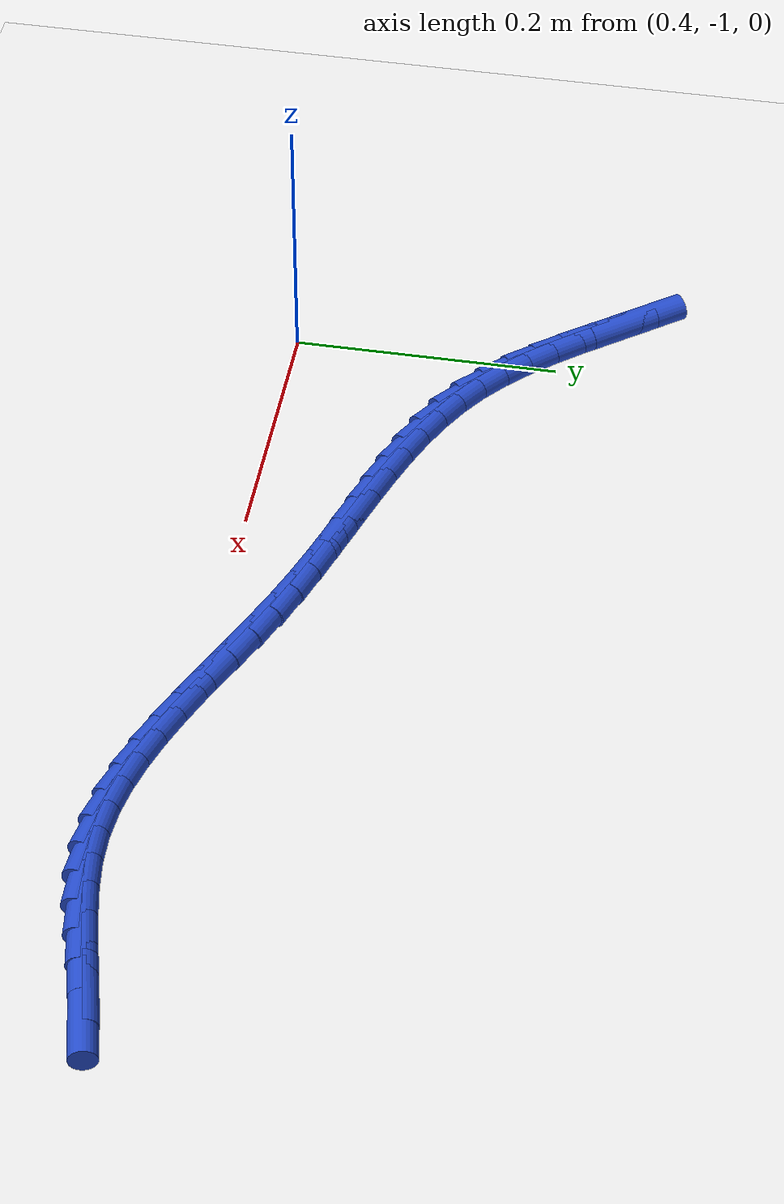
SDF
<sdf version="1.6">
 <world name="default">
  <model name="ground_plane">
   <static>1</static>
   <link name="link">
    <collision name="collision">
     <geometry><plane><normal>0 0 1</normal><size>100 100</size></plane></geometry>
     <surface><friction><ode><mu>100</mu><mu2>50</mu2></ode></friction></surface>
    </collision>
    <visual name="visual">
     <cast_shadows>0</cast_shadows>
     <geometry><plane><normal>0 0 1</normal><size>100 100</size></plane></geometry>
     <material>
      <script><uri>file://media/materials/scripts/gazebo.material</uri><name>Gazebo/WhiteGlow</name></script>
     </material>
    </visual>
   </link>
  </model>
  <model name="line">
   <link name="link_202">
    <pose>1.053801690898591 -1.0093807963701966 0.01 0 1.57 0.23704104024897</pose>
    <collision name="collision">
     <geometry><cylinder><radius>0.01</radius><length>0.08</length></cylinder></geometry>
    </collision>
    <visual name="visual">
     <material>
      <script><name>Gazebo/Blue</name><uri>file://media/materials/scripts/gazebo.material</uri></script>
     </material>
     <geometry><cylinder><radius>0.01</radius><length>0.08</length></cylinder></geometry>
    </visual>
   </link>
   <link name="link_203">
    <pose>1.0298730687956008 -1.0151615399470244 0.01 0 1.57 0.25125844231466976</pose>
    <collision name="collision">
     <geometry><cylinder><radius>0.01</radius><length>0.08</length></cylinder></geometry>
    </collision>
    <visual name="visual">
     <material>
      <script><name>Gazebo/Blue</name><uri>file://media/materials/scripts/gazebo.material</uri></script>
     </material>
     <geometry><cylinder><radius>0.01</radius><length>0.08</length></cylinder></geometry>
    </visual>
   </link>
   <link name="link_204">
    <pose>1.0061557265822083 -1.0212493748205909 0.01 0 1.57 0.23930543490262804</pose>
    <collision name="collision">
     <geometry><cylinder><radius>0.01</radius><length>0.08</length></cylinder></geometry>
    </collision>
    <visual name="visual">
     <material>
      <script><name>Gazebo/Blue</name><uri>file://media/materials/scripts/gazebo.material</uri></script>
     </material>
     <geometry><cylinder><radius>0.01</radius><length>0.08</length></cylinder></geometry>
    </visual>
   </link>
   <link name="link_205">
    <pose>0.9826399604010251 -1.0269867671548272 0.01 0 1.57 0.20005883130107316</pose>
    <collision name="collision">
     <geometry><cylinder><radius>0.01</radius><length>0.08</length></cylinder></geometry>
    </collision>
    <visual name="visual">
     <material>
      <script><name>Gazebo/Blue</name><uri>file://media/materials/scripts/gazebo.material</uri></script>
     </material>
     <geometry><cylinder><radius>0.01</radius><length>0.08</length></cylinder></geometry>
    </visual>
   </link>
   <link name="link_206">
    <pose>0.9593160663946643 -1.031716183113662 0.01 0 1.57 0.13163189556326638</pose>
    <collision name="collision">
     <geometry><cylinder><radius>0.01</radius><length>0.08</length></cylinder></geometry>
    </collision>
    <visual name="visual">
     <material>
      <script><name>Gazebo/Blue</name><uri>file://media/materials/scripts/gazebo.material</uri></script>
     </material>
     <geometry><cylinder><radius>0.01</radius><length>0.08</length></cylinder></geometry>
    </visual>
   </link>
   <link name="link_207">
    <pose>0.9361743407057364 -1.034780088861026 0.01 0 1.57 0.0327303599863679</pose>
    <collision name="collision">
     <geometry><cylinder><radius>0.01</radius><length>0.08</length></cylinder></geometry>
    </collision>
    <visual name="visual">
     <material>
      <script><name>Gazebo/Blue</name><uri>file://media/materials/scripts/gazebo.material</uri></script>
     </material>
     <geometry><cylinder><radius>0.01</radius><length>0.08</length></cylinder></geometry>
    </visual>
   </link>
   <link name="link_208">
    <pose>0.91320473168007 -1.035532161011429 0.01 0 1.57 -0.07831417767591432</pose>
    <collision name="collision">
     <geometry><cylinder><radius>0.01</radius><length>0.08</length></cylinder></geometry>
    </collision>
    <visual name="visual">
     <material>
      <script><name>Gazebo/Blue</name><uri>file://media/materials/scripts/gazebo.material</uri></script>
     </material>
     <geometry><cylinder><radius>0.01</radius><length>0.08</length></cylinder></geometry>
    </visual>
   </link>
   <link name="link_209">
    <pose>0.8903843045214194 -1.0337413354161022 0.01 0 1.57 -0.17591885933465648</pose>
    <collision name="collision">
     <geometry><cylinder><radius>0.01</radius><length>0.08</length></cylinder></geometry>
    </collision>
    <visual name="visual">
     <material>
      <script><name>Gazebo/Blue</name><uri>file://media/materials/scripts/gazebo.material</uri></script>
     </material>
     <geometry><cylinder><radius>0.01</radius><length>0.08</length></cylinder></geometry>
    </visual>
   </link>
   <link name="link_210">
    <pose>0.8676737484915781 -1.0297043897465143 0.01 0 1.57 -0.2570751072764132</pose>
    <collision name="collision">
     <geometry><cylinder><radius>0.01</radius><length>0.08</length></cylinder></geometry>
    </collision>
    <visual name="visual">
     <material>
      <script><name>Gazebo/Blue</name><uri>file://media/materials/scripts/gazebo.material</uri></script>
     </material>
     <geometry><cylinder><radius>0.01</radius><length>0.08</length></cylinder></geometry>
    </visual>
   </link>
   <link name="link_211">
    <pose>0.8450326938691384 -1.0237522356262105 0.01 0 1.57 -0.32171645570581137</pose>
    <collision name="collision">
     <geometry><cylinder><radius>0.01</radius><length>0.08</length></cylinder></geometry>
    </collision>
    <visual name="visual">
     <material>
      <script><name>Gazebo/Blue</name><uri>file://media/materials/scripts/gazebo.material</uri></script>
     </material>
     <geometry><cylinder><radius>0.01</radius><length>0.08</length></cylinder></geometry>
    </visual>
   </link>
   <link name="link_212">
    <pose>0.8224207709326966 -1.0162157846787365 0.01 0 1.57 -0.3705817903726859</pose>
    <collision name="collision">
     <geometry><cylinder><radius>0.01</radius><length>0.08</length></cylinder></geometry>
    </collision>
    <visual name="visual">
     <material>
      <script><name>Gazebo/Blue</name><uri>file://media/materials/scripts/gazebo.material</uri></script>
     </material>
     <geometry><cylinder><radius>0.01</radius><length>0.08</length></cylinder></geometry>
    </visual>
   </link>
   <link name="link_213">
    <pose>0.7997976099608454 -1.0074259485276373 0.01 0 1.57 -0.40468877338061265</pose>
    <collision name="collision">
     <geometry><cylinder><radius>0.01</radius><length>0.08</length></cylinder></geometry>
    </collision>
    <visual name="visual">
     <material>
      <script><name>Gazebo/Blue</name><uri>file://media/materials/scripts/gazebo.material</uri></script>
     </material>
     <geometry><cylinder><radius>0.01</radius><length>0.08</length></cylinder></geometry>
    </visual>
   </link>
   <link name="link_214">
    <pose>0.7771228412321811 -0.99771363879646 0.01 0 1.57 -0.42500094490685325</pose>
    <collision name="collision">
     <geometry><cylinder><radius>0.01</radius><length>0.08</length></cylinder></geometry>
    </collision>
    <visual name="visual">
     <material>
      <script><name>Gazebo/Blue</name><uri>file://media/materials/scripts/gazebo.material</uri></script>
     </material>
     <geometry><cylinder><radius>0.01</radius><length>0.08</length></cylinder></geometry>
    </visual>
   </link>
   <link name="link_215">
    <pose>0.7543560950252969 -0.9874097671087491 0.01 0 1.57 -0.4322533087256352</pose>
    <collision name="collision">
     <geometry><cylinder><radius>0.01</radius><length>0.08</length></cylinder></geometry>
    </collision>
    <visual name="visual">
     <material>
      <script><name>Gazebo/Blue</name><uri>file://media/materials/scripts/gazebo.material</uri></script>
     </material>
     <geometry><cylinder><radius>0.01</radius><length>0.08</length></cylinder></geometry>
    </visual>
   </link>
   <link name="link_216">
    <pose>0.7314570016187869 -0.9768452450880503 0.01 0 1.57 -0.426881578162088</pose>
    <collision name="collision">
     <geometry><cylinder><radius>0.01</radius><length>0.08</length></cylinder></geometry>
    </collision>
    <visual name="visual">
     <material>
      <script><name>Gazebo/Blue</name><uri>file://media/materials/scripts/gazebo.material</uri></script>
     </material>
     <geometry><cylinder><radius>0.01</radius><length>0.08</length></cylinder></geometry>
    </visual>
   </link>
   <link name="link_217">
    <pose>0.708385191291247 -0.9663509843579099 0.01 0 1.57 -0.40901505777289276</pose>
    <collision name="collision">
     <geometry><cylinder><radius>0.01</radius><length>0.08</length></cylinder></geometry>
    </collision>
    <visual name="visual">
     <material>
      <script><name>Gazebo/Blue</name><uri>file://media/materials/scripts/gazebo.material</uri></script>
     </material>
     <geometry><cylinder><radius>0.01</radius><length>0.08</length></cylinder></geometry>
    </visual>
   </link>
   <link name="link_218">
    <pose>0.6851002943212698 -0.9562578965418729 0.01 0 1.57 -0.3786873401166284</pose>
    <collision name="collision">
     <geometry><cylinder><radius>0.01</radius><length>0.08</length></cylinder></geometry>
    </collision>
    <visual name="visual">
     <material>
      <script><name>Gazebo/Blue</name><uri>file://media/materials/scripts/gazebo.material</uri></script>
     </material>
     <geometry><cylinder><radius>0.01</radius><length>0.08</length></cylinder></geometry>
    </visual>
   </link>
   <link name="link_219">
    <pose>0.6615632665767752 -0.9468927144681166 0.01 0 1.57 -0.34511020430545647</pose>
    <collision name="collision">
     <geometry><cylinder><radius>0.01</radius><length>0.08</length></cylinder></geometry>
    </collision>
    <visual name="visual">
     <material>
      <script><name>Gazebo/Blue</name><uri>file://media/materials/scripts/gazebo.material</uri></script>
     </material>
     <geometry><cylinder><radius>0.01</radius><length>0.08</length></cylinder></geometry>
    </visual>
   </link>
   <link name="link_220">
    <pose>0.637807851669331 -0.9383527144652833 0.01 0 1.57 -0.3224236787724986</pose>
    <collision name="collision">
     <geometry><cylinder><radius>0.01</radius><length>0.08</length></cylinder></geometry>
    </collision>
    <visual name="visual">
     <material>
      <script><name>Gazebo/Blue</name><uri>file://media/materials/scripts/gazebo.material</uri></script>
     </material>
     <geometry><cylinder><radius>0.01</radius><length>0.08</length></cylinder></geometry>
    </visual>
   </link>
   <link name="link_221">
    <pose>0.6139768964542771 -0.9303912351721243 0.01 0 1.57 -0.31185435318435717</pose>
    <collision name="collision">
     <geometry><cylinder><radius>0.01</radius><length>0.08</length></cylinder></geometry>
    </collision>
    <visual name="visual">
     <material>
      <script><name>Gazebo/Blue</name><uri>file://media/materials/scripts/gazebo.material</uri></script>
     </material>
     <geometry><cylinder><radius>0.01</radius><length>0.08</length></cylinder></geometry>
    </visual>
   </link>
   <link name="link_222">
    <pose>0.590222211549891 -0.922733357809817 0.01 0 1.57 -0.3135800487687502</pose>
    <collision name="collision">
     <geometry><cylinder><radius>0.01</radius><length>0.08</length></cylinder></geometry>
    </collision>
    <visual name="visual">
     <material>
      <script><name>Gazebo/Blue</name><uri>file://media/materials/scripts/gazebo.material</uri></script>
     </material>
     <geometry><cylinder><radius>0.01</radius><length>0.08</length></cylinder></geometry>
    </visual>
   </link>
   <link name="link_223">
    <pose>0.566695607574452 -0.915104163599539 0.01 0 1.57 -0.3279533276589943</pose>
    <collision name="collision">
     <geometry><cylinder><radius>0.01</radius><length>0.08</length></cylinder></geometry>
    </collision>
    <visual name="visual">
     <material>
      <script><name>Gazebo/Blue</name><uri>file://media/materials/scripts/gazebo.material</uri></script>
     </material>
     <geometry><cylinder><radius>0.01</radius><length>0.08</length></cylinder></geometry>
    </visual>
   </link>
   <link name="link_224">
    <pose>0.5435488951462375 -0.9072287337624669 0.01 0 1.57 -0.35550855295221023</pose>
    <collision name="collision">
     <geometry><cylinder><radius>0.01</radius><length>0.08</length></cylinder></geometry>
    </collision>
    <visual name="visual">
     <material>
      <script><name>Gazebo/Blue</name><uri>file://media/materials/scripts/gazebo.material</uri></script>
     </material>
     <geometry><cylinder><radius>0.01</radius><length>0.08</length></cylinder></geometry>
    </visual>
   </link>
   <link name="link_225">
    <pose>0.520933884883527 -0.8988321495197787 0.01 0 1.57 -0.3969079537969859</pose>
    <collision name="collision">
     <geometry><cylinder><radius>0.01</radius><length>0.08</length></cylinder></geometry>
    </collision>
    <visual name="visual">
     <material>
      <script><name>Gazebo/Blue</name><uri>file://media/materials/scripts/gazebo.material</uri></script>
     </material>
     <geometry><cylinder><radius>0.01</radius><length>0.08</length></cylinder></geometry>
    </visual>
   </link>
   <link name="link_226">
    <pose>0.499002387404598 -0.8896394920926514 0.01 0 1.57 -0.452803224707127</pose>
    <collision name="collision">
     <geometry><cylinder><radius>0.01</radius><length>0.08</length></cylinder></geometry>
    </collision>
    <visual name="visual">
     <material>
      <script><name>Gazebo/Blue</name><uri>file://media/materials/scripts/gazebo.material</uri></script>
     </material>
     <geometry><cylinder><radius>0.01</radius><length>0.08</length></cylinder></geometry>
    </visual>
   </link>
   <link name="link_227">
    <pose>0.47790621332772815 -0.8793758427022617 0.01 0 1.57 -0.5235838733175611</pose>
    <collision name="collision">
     <geometry><cylinder><radius>0.01</radius><length>0.08</length></cylinder></geometry>
    </collision>
    <visual name="visual">
     <material>
      <script><name>Gazebo/Blue</name><uri>file://media/materials/scripts/gazebo.material</uri></script>
     </material>
     <geometry><cylinder><radius>0.01</radius><length>0.08</length></cylinder></geometry>
    </visual>
   </link>
   <link name="link_228">
    <pose>0.45779717327119707 -0.8677662825697878 0.01 0 1.57 -0.6090017443436624</pose>
    <collision name="collision">
     <geometry><cylinder><radius>0.01</radius><length>0.08</length></cylinder></geometry>
    </collision>
    <visual name="visual">
     <material>
      <script><name>Gazebo/Blue</name><uri>file://media/materials/scripts/gazebo.material</uri></script>
     </material>
     <geometry><cylinder><radius>0.01</radius><length>0.08</length></cylinder></geometry>
    </visual>
   </link>
   <link name="link_229">
    <pose>0.438827077853282 -0.8545358929164063 0.01 0 1.57 -0.704491916545959</pose>
    <collision name="collision">
     <geometry><cylinder><radius>0.01</radius><length>0.08</length></cylinder></geometry>
    </collision>
    <visual name="visual">
     <material>
      <script><name>Gazebo/Blue</name><uri>file://media/materials/scripts/gazebo.material</uri></script>
     </material>
     <geometry><cylinder><radius>0.01</radius><length>0.08</length></cylinder></geometry>
    </visual>
   </link>
   <link name="link_230">
    <pose>0.4211063393907866 -0.839473330779386 0.01 0 1.57 -0.7880008231963491</pose>
    <collision name="collision">
     <geometry><cylinder><radius>0.01</radius><length>0.08</length></cylinder></geometry>
    </collision>
    <visual name="visual">
     <material>
      <script><name>Gazebo/Blue</name><uri>file://media/materials/scripts/gazebo.material</uri></script>
     </material>
     <geometry><cylinder><radius>0.01</radius><length>0.08</length></cylinder></geometry>
    </visual>
   </link>
   <link name="link_231">
    <pose>0.4044857321998151 -0.8227659820615333 0.01 0 1.57 -0.8516226220588674</pose>
    <collision name="collision">
     <geometry><cylinder><radius>0.01</radius><length>0.08</length></cylinder></geometry>
    </collision>
    <visual name="visual">
     <material>
      <script><name>Gazebo/Blue</name><uri>file://media/materials/scripts/gazebo.material</uri></script>
     </material>
     <geometry><cylinder><radius>0.01</radius><length>0.08</length></cylinder></geometry>
    </visual>
   </link>
   <link name="link_232">
    <pose>0.3887155986060732 -0.8047554671517057 0.01 0 1.57 -0.896307632832493</pose>
    <collision name="collision">
     <geometry><cylinder><radius>0.01</radius><length>0.08</length></cylinder></geometry>
    </collision>
    <visual name="visual">
     <material>
      <script><name>Gazebo/Blue</name><uri>file://media/materials/scripts/gazebo.material</uri></script>
     </material>
     <geometry><cylinder><radius>0.01</radius><length>0.08</length></cylinder></geometry>
    </visual>
   </link>
   <link name="link_233">
    <pose>0.3735460637002324 -0.7857837400489284 0.01 0 1.57 -0.92320562113707</pose>
    <collision name="collision">
     <geometry><cylinder><radius>0.01</radius><length>0.08</length></cylinder></geometry>
    </collision>
    <visual name="visual">
     <material>
      <script><name>Gazebo/Blue</name><uri>file://media/materials/scripts/gazebo.material</uri></script>
     </material>
     <geometry><cylinder><radius>0.01</radius><length>0.08</length></cylinder></geometry>
    </visual>
   </link>
   <link name="link_234">
    <pose>0.3587272525729664 -0.7661927547522293 0.01 0 1.57 -0.9332244291570516</pose>
    <collision name="collision">
     <geometry><cylinder><radius>0.01</radius><length>0.08</length></cylinder></geometry>
    </collision>
    <visual name="visual">
     <material>
      <script><name>Gazebo/Blue</name><uri>file://media/materials/scripts/gazebo.material</uri></script>
     </material>
     <geometry><cylinder><radius>0.01</radius><length>0.08</length></cylinder></geometry>
    </visual>
   </link>
   <link name="link_235">
    <pose>0.3440092903149478 -0.746324465260635 0.01 0 1.57 -0.9268345800759837</pose>
    <collision name="collision">
     <geometry><cylinder><radius>0.01</radius><length>0.08</length></cylinder></geometry>
    </collision>
    <visual name="visual">
     <material>
      <script><name>Gazebo/Blue</name><uri>file://media/materials/scripts/gazebo.material</uri></script>
     </material>
     <geometry><cylinder><radius>0.01</radius><length>0.08</length></cylinder></geometry>
    </visual>
   </link>
  </model>
 </world>
</sdf>
